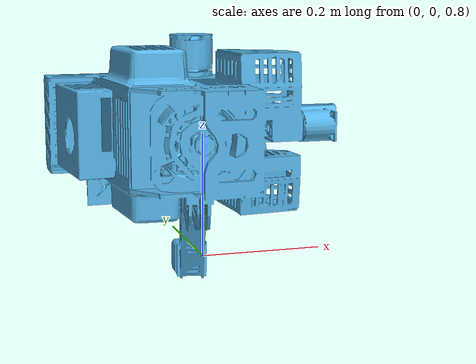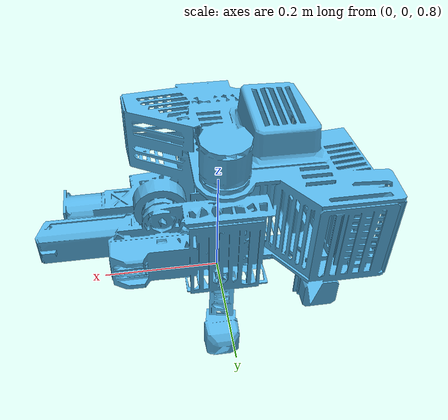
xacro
<?xml version="1.0" encoding="utf-8"?>

<robot name="rcia_gimbal"
  xmlns:xacro="http://ros.org/wiki/xacro">

  <xacro:arg name="xyz" default="0.10 0 0.0" />
  <xacro:arg name="rpy" default="0 0 0" />

  <link name="odom" />

  <link name="gimbal_link">
    <visual>
      <geometry>
        <mesh filename="package://rcia_robot_description/meshes/gimbal.stl" scale="1.0 1.0 1.0"/>
      </geometry>
    </visual>
  </link>

  <joint name="gimbal_joint" type="floating">
    <origin xyz="0 0 1" rpy="0 0 0"/>
    <parent link="odom" />
    <child link="gimbal_link" />

    <axis xyz="0 0 1"/>
  </joint>

  <link name="camera_link" />

  <joint name="camera_joint" type="fixed">
    <origin xyz="$(arg xyz)" rpy="$(arg rpy)" />
    <parent link="gimbal_link" />
    <child link="camera_link" />
    <axis xyz="0 0 0" />
  </joint>

  <link name="camera_optical_frame" />

  <joint name="camera_optical_joint" type="fixed">
    <origin xyz="0 0 0" rpy="0 0 0" />
    <parent link="camera_link" />
    <child link="camera_optical_frame" />
  </joint>

</robot>
